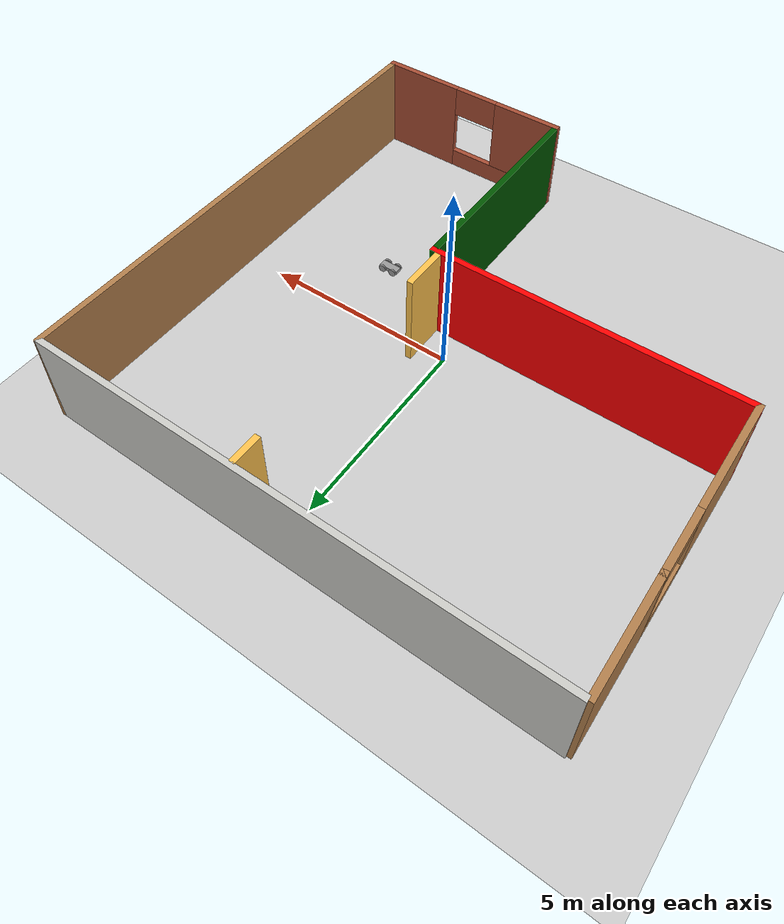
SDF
<sdf version="1.6">
 <world name="default">
  <model name="ground_plane">
   <static>1</static>
   <link name="link">
    <collision name="collision">
     <geometry><plane><normal>0 0 1</normal><size>100 100</size></plane></geometry>
     <surface><friction><ode><mu>100</mu><mu2>50</mu2></ode></friction></surface>
    </collision>
    <visual name="visual">
     <cast_shadows>0</cast_shadows>
     <geometry><plane><normal>0 0 1</normal><size>100 100</size></plane></geometry>
     <material>
      <script><uri>file://media/materials/scripts/gazebo.material</uri><name>Gazebo/Grey</name></script>
     </material>
    </visual>
   </link>
  </model>
  <model name="simple_house">
   <pose>-0.355628 -0.086262 0 0 -0 0</pose>
   <link name="Wall_0">
    <collision name="Wall_0_Collision">
     <geometry><box><size>12.75 0.15 2.5</size></box></geometry>
     <pose>0 0 1.25 0 -0 0</pose>
    </collision>
    <visual name="Wall_0_Visual">
     <pose>0 0 1.25 0 -0 0</pose>
     <geometry><box><size>12.75 0.15 2.5</size></box></geometry>
     <material>
      <script><uri>file://media/materials/scripts/gazebo.material</uri><name>Gazebo/CeilingTiled</name></script>
      <ambient>1 1 1 1</ambient>
     </material>
    </visual>
    <pose>0.05 6.3 0 0 -0 0</pose>
   </link>
   <link name="Wall_1">
    <collision name="Wall_1_Collision">
     <geometry><box><size>12.75 0.15 2.5</size></box></geometry>
     <pose>0 0 1.25 0 -0 0</pose>
    </collision>
    <visual name="Wall_1_Visual">
     <pose>0 0 1.25 0 -0 0</pose>
     <geometry><box><size>12.75 0.15 2.5</size></box></geometry>
     <material>
      <script><uri>file://media/materials/scripts/gazebo.material</uri><name>Gazebo/Wood</name></script>
      <ambient>1 1 1 1</ambient>
     </material>
    </visual>
    <pose>6.35 0 0 0 0 -1.5708</pose>
   </link>
   <link name="Wall_2">
    <pose>3.8 -6.3 0 0 -0 3.14159</pose>
    <visual name="Wall_2_Visual_0">
     <pose>-1.53314 0 1.25 0 -0 0</pose>
     <geometry><box><size>2.18372 0.15 2.5</size></box></geometry>
     <material>
      <script><uri>file://media/materials/scripts/gazebo.material</uri><name>Gazebo/Bricks</name></script>
      <ambient>1 1 1 1</ambient>
     </material>
    </visual>
    <collision name="Wall_2_Collision_0">
     <geometry><box><size>2.18372 0.15 2.5</size></box></geometry>
     <pose>-1.53314 0 1.25 0 -0 0</pose>
    </collision>
    <visual name="Wall_2_Visual_1">
     <pose>1.09186 0 0.25 0 -0 0</pose>
     <geometry><box><size>3.06628 0.15 0.5</size></box></geometry>
     <material>
      <script><uri>file://media/materials/scripts/gazebo.material</uri><name>Gazebo/Bricks</name></script>
      <ambient>1 1 1 1</ambient>
     </material>
    </visual>
    <collision name="Wall_2_Collision_1">
     <geometry><box><size>3.06628 0.15 0.5</size></box></geometry>
     <pose>1.09186 0 0.25 0 -0 0</pose>
    </collision>
    <visual name="Wall_2_Visual_2">
     <pose>1.69186 0 1.5 0 -0 0</pose>
     <geometry><box><size>1.86628 0.15 2</size></box></geometry>
     <material>
      <script><uri>file://media/materials/scripts/gazebo.material</uri><name>Gazebo/Bricks</name></script>
      <ambient>1 1 1 1</ambient>
     </material>
    </visual>
    <collision name="Wall_2_Collision_2">
     <geometry><box><size>1.86628 0.15 2</size></box></geometry>
     <pose>1.69186 0 1.5 0 -0 0</pose>
    </collision>
    <visual name="Wall_2_Visual_3">
     <pose>0.158717 0 2.1 0 -0 0</pose>
     <geometry><box><size>1.2 0.15 0.8</size></box></geometry>
     <material>
      <script><uri>file://media/materials/scripts/gazebo.material</uri><name>Gazebo/Bricks</name></script>
      <ambient>1 1 1 1</ambient>
     </material>
    </visual>
    <collision name="Wall_2_Collision_3">
     <geometry><box><size>1.2 0.15 0.8</size></box></geometry>
     <pose>0.158717 0 2.1 0 -0 0</pose>
    </collision>
   </link>
   <link name="Wall_3">
    <collision name="Wall_3_Collision">
     <geometry><box><size>5.75 0.15 2.5</size></box></geometry>
     <pose>0 0 1.25 0 -0 0</pose>
    </collision>
    <visual name="Wall_3_Visual">
     <pose>0 0 1.25 0 -0 0</pose>
     <geometry><box><size>5.75 0.15 2.5</size></box></geometry>
     <material>
      <script><uri>file://media/materials/scripts/gazebo.material</uri><name>Gazebo/Grey</name></script>
      <ambient>0 0.333333 0 1</ambient>
     </material>
    </visual>
    <pose>1.25 -3.5 0 0 -0 1.5708</pose>
   </link>
   <link name="Wall_4">
    <collision name="Wall_4_Collision">
     <geometry><box><size>7.75 0.15 2.5</size></box></geometry>
     <pose>0 0 1.25 0 -0 0</pose>
    </collision>
    <visual name="Wall_4_Visual">
     <pose>0 0 1.25 0 -0 0</pose>
     <geometry><box><size>7.75 0.15 2.5</size></box></geometry>
     <material>
      <script><uri>file://media/materials/scripts/gazebo.material</uri><name>Gazebo/Grey</name></script>
      <ambient>1 0 0 1</ambient>
     </material>
    </visual>
    <pose>-2.55 -0.7 0 0 -0 3.14159</pose>
   </link>
   <link name="Wall_5">
    <pose>-6.35 1.475 0 0 -0 1.5708</pose>
    <visual name="Wall_5_Visual_0">
     <pose>-0.819987 0 1.25 0 -0 0</pose>
     <geometry><box><size>2.86003 0.15 2.5</size></box></geometry>
     <material>
      <script><uri>file://media/materials/scripts/gazebo.material</uri><name>Gazebo/Wood</name></script>
      <ambient>1 1 1 1</ambient>
     </material>
    </visual>
    <collision name="Wall_5_Collision_0">
     <geometry><box><size>2.86003 0.15 2.5</size></box></geometry>
     <pose>-0.819987 0 1.25 0 -0 0</pose>
    </collision>
    <visual name="Wall_5_Visual_1">
     <pose>1.43001 0 0.25 0 -0 0</pose>
     <geometry><box><size>1.63997 0.15 0.5</size></box></geometry>
     <material>
      <script><uri>file://media/materials/scripts/gazebo.material</uri><name>Gazebo/Wood</name></script>
      <ambient>1 1 1 1</ambient>
     </material>
    </visual>
    <collision name="Wall_5_Collision_1">
     <geometry><box><size>1.63997 0.15 0.5</size></box></geometry>
     <pose>1.43001 0 0.25 0 -0 0</pose>
    </collision>
    <visual name="Wall_5_Visual_2">
     <pose>2.18001 0 1.5 0 -0 0</pose>
     <geometry><box><size>0.139974 0.15 2</size></box></geometry>
     <material>
      <script><uri>file://media/materials/scripts/gazebo.material</uri><name>Gazebo/Wood</name></script>
      <ambient>1 1 1 1</ambient>
     </material>
    </visual>
    <collision name="Wall_5_Collision_2">
     <geometry><box><size>0.139974 0.15 2</size></box></geometry>
     <pose>2.18001 0 1.5 0 -0 0</pose>
    </collision>
    <visual name="Wall_5_Visual_3">
     <pose>1.36003 0 2.25 0 -0 0</pose>
     <geometry><box><size>1.5 0.15 0.5</size></box></geometry>
     <material>
      <script><uri>file://media/materials/scripts/gazebo.material</uri><name>Gazebo/Wood</name></script>
      <ambient>1 1 1 1</ambient>
     </material>
    </visual>
    <collision name="Wall_5_Collision_3">
     <geometry><box><size>1.5 0.15 0.5</size></box></geometry>
     <pose>1.36003 0 2.25 0 -0 0</pose>
    </collision>
   </link>
   <link name="Wall_6">
    <collision name="Wall_6_Collision">
     <geometry><box><size>2.75 0.15 2.5</size></box></geometry>
     <pose>0 0 1.25 0 -0 0</pose>
    </collision>
    <visual name="Wall_6_Visual">
     <pose>0 0 1.25 0 -0 0</pose>
     <geometry><box><size>2.75 0.15 2.5</size></box></geometry>
     <material>
      <script><uri>file://media/materials/scripts/gazebo.material</uri><name>Gazebo/Wood</name></script>
      <ambient>1 1 1 1</ambient>
     </material>
    </visual>
    <pose>-6.35 4.95 0 0 -0 1.5708</pose>
   </link>
   <link name="Wall_8">
    <pose>1.09258 2.84875 0 0 0 -1.5708</pose>
    <visual name="Wall_8_Visual_0">
     <pose>-3.07405 0 1.25 0 -0 0</pose>
     <geometry><box><size>0.851902 0.15 2.5</size></box></geometry>
     <material>
      <script><uri>file://media/materials/scripts/gazebo.material</uri><name>Gazebo/Grey</name></script>
      <ambient>1 0.764706 0.305882 1</ambient>
     </material>
    </visual>
    <collision name="Wall_8_Collision_0">
     <geometry><box><size>0.851902 0.15 2.5</size></box></geometry>
     <pose>-3.07405 0 1.25 0 -0 0</pose>
    </collision>
    <visual name="Wall_8_Visual_1">
     <pose>2.92595 0 1.25 0 -0 0</pose>
     <geometry><box><size>1.1481 0.15 2.5</size></box></geometry>
     <material>
      <script><uri>file://media/materials/scripts/gazebo.material</uri><name>Gazebo/Grey</name></script>
      <ambient>1 0.764706 0.305882 1</ambient>
     </material>
    </visual>
    <collision name="Wall_8_Collision_1">
     <geometry><box><size>1.1481 0.15 2.5</size></box></geometry>
     <pose>2.92595 0 1.25 0 -0 0</pose>
    </collision>
   </link>
   <static>1</static>
  </model>
  <model name="4wheel_small_clone">
   <link name="link_0">
    <inertial>
     <mass>0.161541</mass>
     <inertia>
      <ixx>0.00544895</ixx>
      <ixy>0</ixy>
      <ixz>0</ixz>
      <iyy>0.014545</iyy>
      <iyz>0</iyz>
      <izz>0.0178275</izz>
     </inertia>
    </inertial>
    <visual name="visual">
     <geometry><box><size>0.5 0.2 0.1</size></box></geometry>
     <material>
      <lighting>1</lighting>
      <script><uri>file://media/materials/scripts/gazebo.material</uri><name>Gazebo/Grey</name></script>
      <ambient>0.3 0.3 0.3 1</ambient>
      <diffuse>0.7 0.7 0.7 1</diffuse>
      <specular>0.01 0.01 0.01 1</specular>
      <emissive>0 0 0 1</emissive>
      <shader type="vertex"><normal_map>__default__</normal_map></shader>
     </material>
    </visual>
    <collision name="collision">
     <geometry><box><size>0.5 0.2 0.1</size></box></geometry>
     <surface>
      <friction>
       <ode><mu>1</mu><mu2>1</mu2><fdir1>0 0 0</fdir1><slip1>0</slip1><slip2>0</slip2></ode>
       <torsional>
        <coefficient>1</coefficient>
        <patch_radius>0</patch_radius>
        <surface_radius>0</surface_radius>
        <use_patch_radius>1</use_patch_radius>
        <ode><slip>0</slip></ode>
       </torsional>
      </friction>
      <bounce><restitution_coefficient>0</restitution_coefficient><threshold>1e+06</threshold></bounce>
      <contact>
       <collide_without_contact>0</collide_without_contact>
       <collide_without_contact_bitmask>1</collide_without_contact_bitmask>
       <collide_bitmask>1</collide_bitmask>
       <ode>
        <soft_cfm>0</soft_cfm>
        <soft_erp>0.2</soft_erp>
        <kp>1e+13</kp>
        <kd>1</kd>
        <max_vel>0.01</max_vel>
        <min_depth>0</min_depth>
       </ode>
       <bullet>
        <split_impulse>1</split_impulse>
        <split_impulse_penetration_threshold>-0.01</split_impulse_penetration_threshold>
        <soft_cfm>0</soft_cfm>
        <soft_erp>0.2</soft_erp>
        <kp>1e+13</kp>
        <kd>1</kd>
       </bullet>
      </contact>
     </surface>
    </collision>
   </link>
   <link name="link_1">
    <pose>0.15 -0.12501 0 1.5707 -0 0</pose>
    <inertial>
     <mass>1</mass>
     <inertia><ixx>0.145833</ixx><ixy>0</ixy><ixz>0</ixz><iyy>0.145833</iyy><iyz>0</iyz><izz>0.125</izz></inertia>
    </inertial>
    <visual name="visual">
     <geometry><cylinder><radius>0.1</radius><length>0.05</length></cylinder></geometry>
     <material>
      <lighting>1</lighting>
      <script><uri>file://media/materials/scripts/gazebo.material</uri><name>Gazebo/Grey</name></script>
      <ambient>0.3 0.3 0.3 1</ambient>
      <diffuse>0.7 0.7 0.7 1</diffuse>
      <specular>0.01 0.01 0.01 1</specular>
      <emissive>0 0 0 1</emissive>
      <shader type="vertex"><normal_map>__default__</normal_map></shader>
     </material>
    </visual>
    <collision name="collision">
     <geometry><cylinder><radius>0.1</radius><length>0.05</length></cylinder></geometry>
     <surface>
      <friction>
       <ode><mu>1</mu><mu2>1</mu2><fdir1>0 0 0</fdir1><slip1>0</slip1><slip2>0</slip2></ode>
       <torsional>
        <coefficient>1</coefficient>
        <patch_radius>0</patch_radius>
        <surface_radius>0</surface_radius>
        <use_patch_radius>1</use_patch_radius>
        <ode><slip>0</slip></ode>
       </torsional>
      </friction>
      <bounce><restitution_coefficient>0</restitution_coefficient><threshold>1e+06</threshold></bounce>
      <contact>
       <collide_without_contact>0</collide_without_contact>
       <collide_without_contact_bitmask>1</collide_without_contact_bitmask>
       <collide_bitmask>1</collide_bitmask>
       <ode>
        <soft_cfm>0</soft_cfm>
        <soft_erp>0.2</soft_erp>
        <kp>1e+13</kp>
        <kd>1</kd>
        <max_vel>0.01</max_vel>
        <min_depth>0</min_depth>
       </ode>
       <bullet>
        <split_impulse>1</split_impulse>
        <split_impulse_penetration_threshold>-0.01</split_impulse_penetration_threshold>
        <soft_cfm>0</soft_cfm>
        <soft_erp>0.2</soft_erp>
        <kp>1e+13</kp>
        <kd>1</kd>
       </bullet>
      </contact>
     </surface>
    </collision>
   </link>
   <link name="link_1_clone">
    <pose>0.15 0.12501 0 1.5707 -0 0</pose>
    <inertial>
     <mass>1</mass>
     <inertia><ixx>0.145833</ixx><ixy>0</ixy><ixz>0</ixz><iyy>0.145833</iyy><iyz>0</iyz><izz>0.125</izz></inertia>
    </inertial>
    <visual name="visual">
     <geometry><cylinder><radius>0.1</radius><length>0.05</length></cylinder></geometry>
     <material>
      <lighting>1</lighting>
      <script><uri>file://media/materials/scripts/gazebo.material</uri><name>Gazebo/Grey</name></script>
      <ambient>0.3 0.3 0.3 1</ambient>
      <diffuse>0.7 0.7 0.7 1</diffuse>
      <specular>0.01 0.01 0.01 1</specular>
      <emissive>0 0 0 1</emissive>
      <shader type="vertex"><normal_map>__default__</normal_map></shader>
     </material>
    </visual>
    <collision name="collision">
     <geometry><cylinder><radius>0.1</radius><length>0.05</length></cylinder></geometry>
     <surface>
      <friction>
       <ode><mu>1</mu><mu2>1</mu2><fdir1>0 0 0</fdir1><slip1>0</slip1><slip2>0</slip2></ode>
       <torsional>
        <coefficient>1</coefficient>
        <patch_radius>0</patch_radius>
        <surface_radius>0</surface_radius>
        <use_patch_radius>1</use_patch_radius>
        <ode><slip>0</slip></ode>
       </torsional>
      </friction>
      <bounce><restitution_coefficient>0</restitution_coefficient><threshold>1e+06</threshold></bounce>
      <contact>
       <collide_without_contact>0</collide_without_contact>
       <collide_without_contact_bitmask>1</collide_without_contact_bitmask>
       <collide_bitmask>1</collide_bitmask>
       <ode>
        <soft_cfm>0</soft_cfm>
        <soft_erp>0.2</soft_erp>
        <kp>1e+13</kp>
        <kd>1</kd>
        <max_vel>0.01</max_vel>
        <min_depth>0</min_depth>
       </ode>
       <bullet>
        <split_impulse>1</split_impulse>
        <split_impulse_penetration_threshold>-0.01</split_impulse_penetration_threshold>
        <soft_cfm>0</soft_cfm>
        <soft_erp>0.2</soft_erp>
        <kp>1e+13</kp>
        <kd>1</kd>
       </bullet>
      </contact>
     </surface>
    </collision>
   </link>
   <link name="link_1_clone_clone">
    <pose>-0.15 0.12501 0 1.5707 -0 0</pose>
    <inertial>
     <mass>1</mass>
     <inertia><ixx>0.145833</ixx><ixy>0</ixy><ixz>0</ixz><iyy>0.145833</iyy><iyz>0</iyz><izz>0.125</izz></inertia>
    </inertial>
    <visual name="visual">
     <geometry><cylinder><radius>0.1</radius><length>0.05</length></cylinder></geometry>
     <material>
      <lighting>1</lighting>
      <script><uri>file://media/materials/scripts/gazebo.material</uri><name>Gazebo/Grey</name></script>
      <ambient>0.3 0.3 0.3 1</ambient>
      <diffuse>0.7 0.7 0.7 1</diffuse>
      <specular>0.01 0.01 0.01 1</specular>
      <emissive>0 0 0 1</emissive>
      <shader type="vertex"><normal_map>__default__</normal_map></shader>
     </material>
    </visual>
    <collision name="collision">
     <geometry><cylinder><radius>0.1</radius><length>0.05</length></cylinder></geometry>
     <surface>
      <friction>
       <ode><mu>1</mu><mu2>1</mu2><fdir1>0 0 0</fdir1><slip1>0</slip1><slip2>0</slip2></ode>
       <torsional>
        <coefficient>1</coefficient>
        <patch_radius>0</patch_radius>
        <surface_radius>0</surface_radius>
        <use_patch_radius>1</use_patch_radius>
        <ode><slip>0</slip></ode>
       </torsional>
      </friction>
      <bounce><restitution_coefficient>0</restitution_coefficient><threshold>1e+06</threshold></bounce>
      <contact>
       <collide_without_contact>0</collide_without_contact>
       <collide_without_contact_bitmask>1</collide_without_contact_bitmask>
       <collide_bitmask>1</collide_bitmask>
       <ode>
        <soft_cfm>0</soft_cfm>
        <soft_erp>0.2</soft_erp>
        <kp>1e+13</kp>
        <kd>1</kd>
        <max_vel>0.01</max_vel>
        <min_depth>0</min_depth>
       </ode>
       <bullet>
        <split_impulse>1</split_impulse>
        <split_impulse_penetration_threshold>-0.01</split_impulse_penetration_threshold>
        <soft_cfm>0</soft_cfm>
        <soft_erp>0.2</soft_erp>
        <kp>1e+13</kp>
        <kd>1</kd>
       </bullet>
      </contact>
     </surface>
    </collision>
   </link>
   <link name="link_1_clone_clone_clone">
    <pose>-0.15 -0.12501 0 1.5707 -0 0</pose>
    <inertial>
     <mass>1</mass>
     <inertia><ixx>0.145833</ixx><ixy>0</ixy><ixz>0</ixz><iyy>0.145833</iyy><iyz>0</iyz><izz>0.125</izz></inertia>
    </inertial>
    <visual name="visual">
     <geometry><cylinder><radius>0.1</radius><length>0.05</length></cylinder></geometry>
     <material>
      <lighting>1</lighting>
      <script><uri>file://media/materials/scripts/gazebo.material</uri><name>Gazebo/Grey</name></script>
      <ambient>0.3 0.3 0.3 1</ambient>
      <diffuse>0.7 0.7 0.7 1</diffuse>
      <specular>0.01 0.01 0.01 1</specular>
      <emissive>0 0 0 1</emissive>
      <shader type="vertex"><normal_map>__default__</normal_map></shader>
     </material>
    </visual>
    <collision name="collision">
     <geometry><cylinder><radius>0.1</radius><length>0.05</length></cylinder></geometry>
     <surface>
      <friction>
       <ode><mu>1</mu><mu2>1</mu2><fdir1>0 0 0</fdir1><slip1>0</slip1><slip2>0</slip2></ode>
       <torsional>
        <coefficient>1</coefficient>
        <patch_radius>0</patch_radius>
        <surface_radius>0</surface_radius>
        <use_patch_radius>1</use_patch_radius>
        <ode><slip>0</slip></ode>
       </torsional>
      </friction>
      <bounce><restitution_coefficient>0</restitution_coefficient><threshold>1e+06</threshold></bounce>
      <contact>
       <collide_without_contact>0</collide_without_contact>
       <collide_without_contact_bitmask>1</collide_without_contact_bitmask>
       <collide_bitmask>1</collide_bitmask>
       <ode>
        <soft_cfm>0</soft_cfm>
        <soft_erp>0.2</soft_erp>
        <kp>1e+13</kp>
        <kd>1</kd>
        <max_vel>0.01</max_vel>
        <min_depth>0</min_depth>
       </ode>
       <bullet>
        <split_impulse>1</split_impulse>
        <split_impulse_penetration_threshold>-0.01</split_impulse_penetration_threshold>
        <soft_cfm>0</soft_cfm>
        <soft_erp>0.2</soft_erp>
        <kp>1e+13</kp>
        <kd>1</kd>
       </bullet>
      </contact>
     </surface>
    </collision>
   </link>
   <joint name="link_0_JOINT_0" type="revolute">
    <parent>link_0</parent>
    <child>link_1</child>
    <axis>
     <xyz>0 0 1</xyz>
     <use_parent_model_frame>0</use_parent_model_frame>
     <limit>
      <lower>-1.79769e+308</lower>
      <upper>1.79769e+308</upper>
      <effort>-1</effort>
      <velocity>-1</velocity>
     </limit>
     <dynamics>
      <spring_reference>0</spring_reference>
      <spring_stiffness>0</spring_stiffness>
      <damping>0</damping>
     </dynamics>
    </axis>
    <physics>
     <ode><limit><cfm>0</cfm><erp>0.2</erp></limit><suspension><cfm>0</cfm><erp>0.2</erp></suspension></ode>
    </physics>
   </joint>
   <joint name="link_0_JOINT_1" type="revolute">
    <parent>link_0</parent>
    <child>link_1_clone</child>
    <axis>
     <xyz>0 0 1</xyz>
     <use_parent_model_frame>0</use_parent_model_frame>
     <limit>
      <lower>-1.79769e+308</lower>
      <upper>1.79769e+308</upper>
      <effort>-1</effort>
      <velocity>-1</velocity>
     </limit>
     <dynamics>
      <spring_reference>0</spring_reference>
      <spring_stiffness>0</spring_stiffness>
      <damping>0</damping>
     </dynamics>
    </axis>
    <physics>
     <ode><limit><cfm>0</cfm><erp>0.2</erp></limit><suspension><cfm>0</cfm><erp>0.2</erp></suspension></ode>
    </physics>
   </joint>
   <joint name="link_0_JOINT_2" type="revolute">
    <parent>link_0</parent>
    <child>link_1_clone_clone</child>
    <axis>
     <xyz>0 0 1</xyz>
     <use_parent_model_frame>0</use_parent_model_frame>
     <limit>
      <lower>-1.79769e+308</lower>
      <upper>1.79769e+308</upper>
      <effort>-1</effort>
      <velocity>-1</velocity>
     </limit>
     <dynamics>
      <spring_reference>0</spring_reference>
      <spring_stiffness>0</spring_stiffness>
      <damping>0</damping>
     </dynamics>
    </axis>
    <physics>
     <ode><limit><cfm>0</cfm><erp>0.2</erp></limit><suspension><cfm>0</cfm><erp>0.2</erp></suspension></ode>
    </physics>
   </joint>
   <joint name="link_0_JOINT_3" type="revolute">
    <parent>link_0</parent>
    <child>link_1_clone_clone_clone</child>
    <axis>
     <xyz>0 0 1</xyz>
     <use_parent_model_frame>0</use_parent_model_frame>
     <limit>
      <lower>-1.79769e+308</lower>
      <upper>1.79769e+308</upper>
      <effort>-1</effort>
      <velocity>-1</velocity>
     </limit>
     <dynamics>
      <spring_reference>0</spring_reference>
      <spring_stiffness>0</spring_stiffness>
      <damping>0</damping>
     </dynamics>
    </axis>
    <physics>
     <ode><limit><cfm>0</cfm><erp>0.2</erp></limit><suspension><cfm>0</cfm><erp>0.2</erp></suspension></ode>
    </physics>
   </joint>
   <static>0</static>
   <pose>2.78715 -1.73609 0.099993 -2e-06 3e-06 0.011288</pose>
  </model>
 </world>
</sdf>
